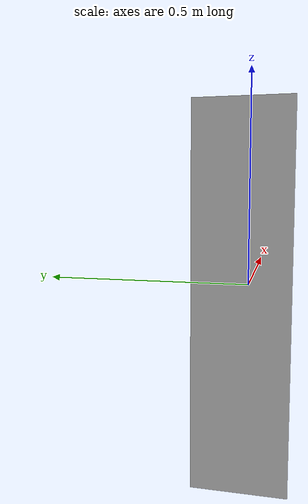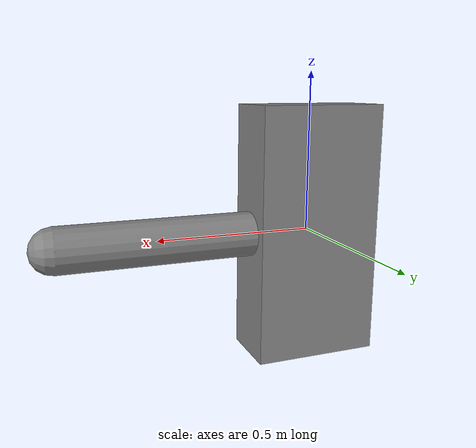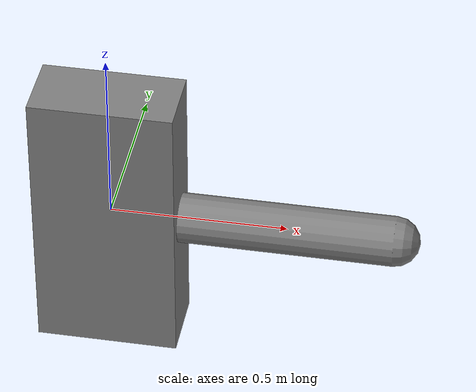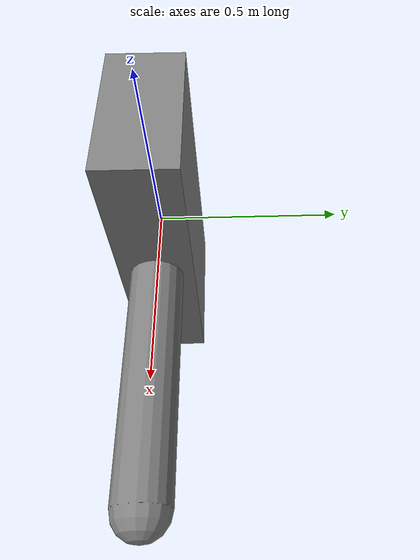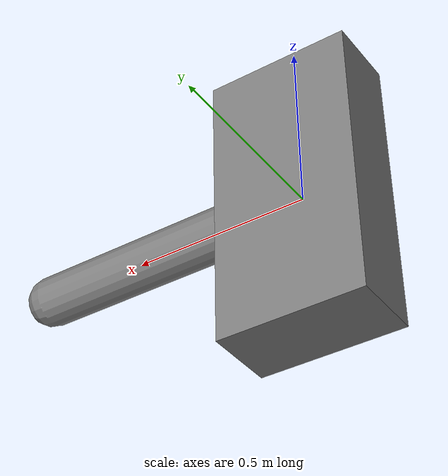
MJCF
<mujoco model="walker2d">
  <compiler angle="degree" coordinate="local" inertiafromgeom="true"/>
  <option integrator="RK4" iterations="50" solver="PGS" timestep="0.001"/>
  <worldbody>
    <!-- CHANGES: see hopper.xml -->
    <body name="base">
      <geom fromto="0 0 0 0.8 0 0" name="base_geom" size="0.07" type="capsule" />

      <body name="leg">
        <joint axis="0 1 0"  pos="0.4 0.0 0.0" limited = "true" range="-90 90" type="hinge"/>
          <geom size="0.2 0.1 0.4" type="box"/>
      </body>
    </body>

    <!-- copied and then replace thigh->thigh_left, leg->leg_left, foot->foot_right -->
  </worldbody>

</mujoco>
